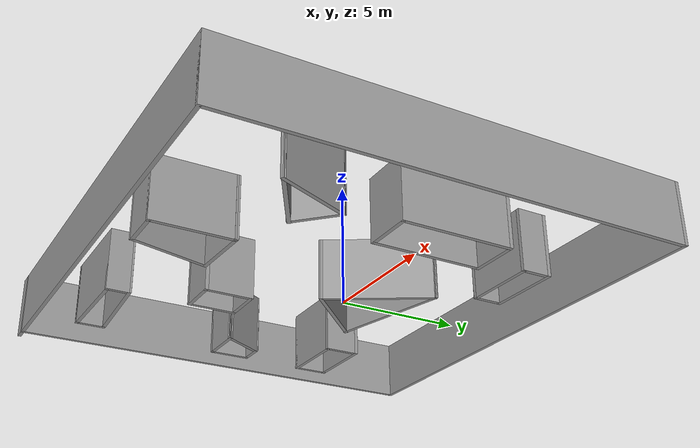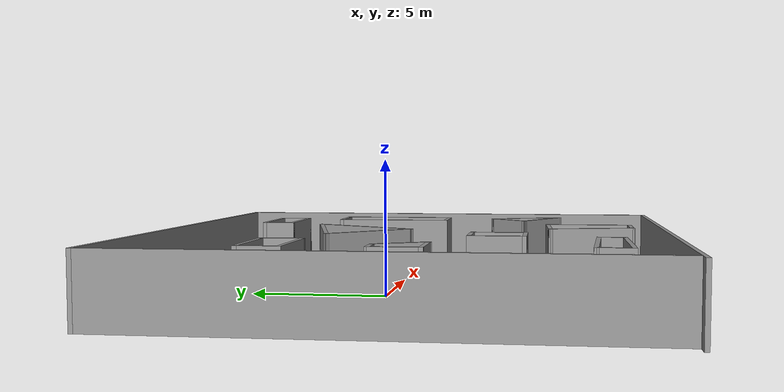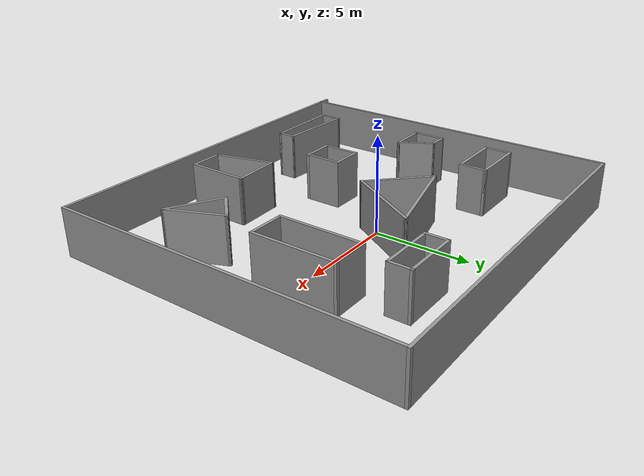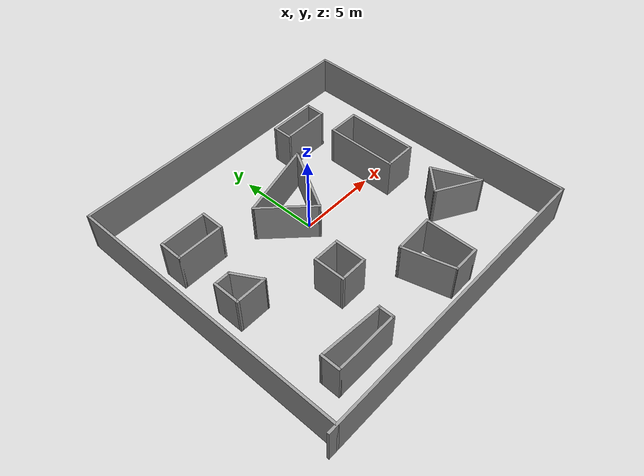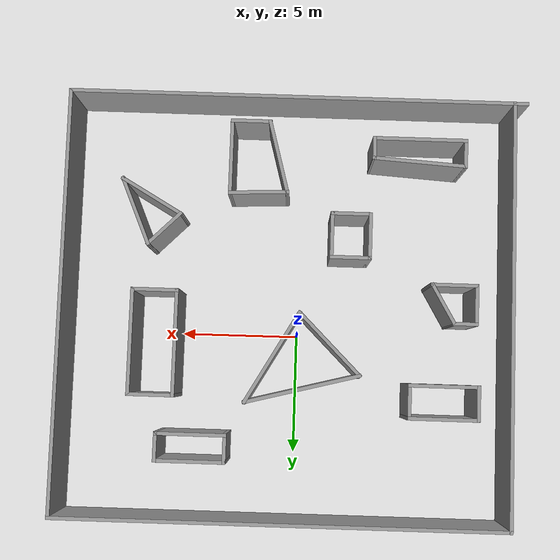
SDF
<?xml version='1.0'?>
<sdf version='1.7'>
  <model name='20250102'>
    <pose>0.220088 -1.15672 0 0 -0 0</pose>
    <link name='Wall_10'>
      <collision name='Wall_10_Collision'>
        <geometry>
          <box>
            <size>1.25 0.15 2.5</size>
          </box>
        </geometry>
        <pose>0 0 1.25 0 -0 0</pose>
      </collision>
      <visual name='Wall_10_Visual'>
        <pose>0 0 1.25 0 -0 0</pose>
        <geometry>
          <box>
            <size>1.25 0.15 2.5</size>
          </box>
        </geometry>
        <material>
          <script>
            <uri>file://media/materials/scripts/gazebo.material</uri>
            <name>Gazebo/Grey</name>
          </script>
          <ambient>1 1 1 1</ambient>
        </material>
        <meta>
          <layer>0</layer>
        </meta>
      </visual>
      <pose>-7.11262 -6.70106 0 0 -0 -1.5708</pose>
    </link>
    <link name='Wall_11'>
      <collision name='Wall_11_Collision'>
        <geometry>
          <box>
            <size>4 0.15 2.5</size>
          </box>
        </geometry>
        <pose>0 0 1.25 0 -0 0</pose>
      </collision>
      <visual name='Wall_11_Visual'>
        <pose>0 0 1.25 0 -0 0</pose>
        <geometry>
          <box>
            <size>4 0.15 2.5</size>
          </box>
        </geometry>
        <material>
          <script>
            <uri>file://media/materials/scripts/gazebo.material</uri>
            <name>Gazebo/Grey</name>
          </script>
          <ambient>1 1 1 1</ambient>
        </material>
        <meta>
          <layer>0</layer>
        </meta>
      </visual>
      <pose>-5.18762 -7.25106 0 0 -0 0</pose>
    </link>
    <link name='Wall_12'>
      <collision name='Wall_12_Collision'>
        <geometry>
          <box>
            <size>1 0.15 2.5</size>
          </box>
        </geometry>
        <pose>0 0 1.25 0 -0 0</pose>
      </collision>
      <visual name='Wall_12_Visual'>
        <pose>0 0 1.25 0 -0 0</pose>
        <geometry>
          <box>
            <size>1 0.15 2.5</size>
          </box>
        </geometry>
        <material>
          <script>
            <uri>file://media/materials/scripts/gazebo.material</uri>
            <name>Gazebo/Grey</name>
          </script>
          <ambient>1 1 1 1</ambient>
        </material>
        <meta>
          <layer>0</layer>
        </meta>
      </visual>
      <pose>-3.26262 -6.82606 0 0 -0 1.5708</pose>
    </link>
    <link name='Wall_13'>
      <collision name='Wall_13_Collision'>
        <geometry>
          <box>
            <size>4.00811 0.15 2.5</size>
          </box>
        </geometry>
        <pose>0 0 1.25 0 -0 0</pose>
      </collision>
      <visual name='Wall_13_Visual'>
        <pose>0 0 1.25 0 -0 0</pose>
        <geometry>
          <box>
            <size>4.00811 0.15 2.5</size>
          </box>
        </geometry>
        <material>
          <script>
            <uri>file://media/materials/scripts/gazebo.material</uri>
            <name>Gazebo/Grey</name>
          </script>
          <ambient>1 1 1 1</ambient>
        </material>
        <meta>
          <layer>0</layer>
        </meta>
      </visual>
      <pose>-5.18762 -6.27606 0 0 -0 3.07675</pose>
    </link>
    <link name='Wall_15'>
      <collision name='Wall_15_Collision'>
        <geometry>
          <box>
            <size>2 0.15 2.5</size>
          </box>
        </geometry>
        <pose>0 0 1.25 0 -0 0</pose>
      </collision>
      <visual name='Wall_15_Visual'>
        <pose>0 0 1.25 0 -0 0</pose>
        <geometry>
          <box>
            <size>2 0.15 2.5</size>
          </box>
        </geometry>
        <material>
          <script>
            <uri>file://media/materials/scripts/gazebo.material</uri>
            <name>Gazebo/Grey</name>
          </script>
          <ambient>1 1 1 1</ambient>
        </material>
        <meta>
          <layer>0</layer>
        </meta>
      </visual>
      <pose>-3.16595 -3.05881 0 0 -0 1.5708</pose>
    </link>
    <link name='Wall_16'>
      <collision name='Wall_16_Collision'>
        <geometry>
          <box>
            <size>1.75 0.15 2.5</size>
          </box>
        </geometry>
        <pose>0 0 1.25 0 -0 0</pose>
      </collision>
      <visual name='Wall_16_Visual'>
        <pose>0 0 1.25 0 -0 0</pose>
        <geometry>
          <box>
            <size>1.75 0.15 2.5</size>
          </box>
        </geometry>
        <material>
          <script>
            <uri>file://media/materials/scripts/gazebo.material</uri>
            <name>Gazebo/Grey</name>
          </script>
          <ambient>1 1 1 1</ambient>
        </material>
        <meta>
          <layer>0</layer>
        </meta>
      </visual>
      <pose>-2.36595 -2.13381 0 0 -0 0</pose>
    </link>
    <link name='Wall_17'>
      <collision name='Wall_17_Collision'>
        <geometry>
          <box>
            <size>2 0.15 2.5</size>
          </box>
        </geometry>
        <pose>0 0 1.25 0 -0 0</pose>
      </collision>
      <visual name='Wall_17_Visual'>
        <pose>0 0 1.25 0 -0 0</pose>
        <geometry>
          <box>
            <size>2 0.15 2.5</size>
          </box>
        </geometry>
        <material>
          <script>
            <uri>file://media/materials/scripts/gazebo.material</uri>
            <name>Gazebo/Grey</name>
          </script>
          <ambient>1 1 1 1</ambient>
        </material>
        <meta>
          <layer>0</layer>
        </meta>
      </visual>
      <pose>-1.56595 -3.05881 0 0 -0 -1.5708</pose>
    </link>
    <link name='Wall_18'>
      <collision name='Wall_18_Collision'>
        <geometry>
          <box>
            <size>1.75 0.15 2.5</size>
          </box>
        </geometry>
        <pose>0 0 1.25 0 -0 0</pose>
      </collision>
      <visual name='Wall_18_Visual'>
        <pose>0 0 1.25 0 -0 0</pose>
        <geometry>
          <box>
            <size>1.75 0.15 2.5</size>
          </box>
        </geometry>
        <material>
          <script>
            <uri>file://media/materials/scripts/gazebo.material</uri>
            <name>Gazebo/Grey</name>
          </script>
          <ambient>1 1 1 1</ambient>
        </material>
        <meta>
          <layer>0</layer>
        </meta>
      </visual>
      <pose>-2.36595 -3.98381 0 0 -0 3.14159</pose>
    </link>
    <link name='Wall_20'>
      <collision name='Wall_20_Collision'>
        <geometry>
          <box>
            <size>3.25 0.15 2.5</size>
          </box>
        </geometry>
        <pose>0 0 1.25 0 -0 0</pose>
      </collision>
      <visual name='Wall_20_Visual'>
        <pose>0 0 1.25 0 -0 0</pose>
        <geometry>
          <box>
            <size>3.25 0.15 2.5</size>
          </box>
        </geometry>
        <material>
          <script>
            <uri>file://media/materials/scripts/gazebo.material</uri>
            <name>Gazebo/Grey</name>
          </script>
          <ambient>1 1 1 1</ambient>
        </material>
        <meta>
          <layer>0</layer>
        </meta>
      </visual>
      <pose>0.771251 -6.32508 0 0 -0 -1.309</pose>
    </link>
    <link name='Wall_21'>
      <collision name='Wall_21_Collision'>
        <geometry>
          <box>
            <size>1.75 0.15 2.5</size>
          </box>
        </geometry>
        <pose>0 0 1.25 0 -0 0</pose>
      </collision>
      <visual name='Wall_21_Visual'>
        <pose>0 0 1.25 0 -0 0</pose>
        <geometry>
          <box>
            <size>1.75 0.15 2.5</size>
          </box>
        </geometry>
        <material>
          <script>
            <uri>file://media/materials/scripts/gazebo.material</uri>
            <name>Gazebo/Grey</name>
          </script>
          <ambient>1 1 1 1</ambient>
        </material>
        <meta>
          <layer>0</layer>
        </meta>
      </visual>
      <pose>1.97242 -7.82227 0 0 -0 0</pose>
    </link>
    <link name='Wall_22'>
      <collision name='Wall_22_Collision'>
        <geometry>
          <box>
            <size>3.25 0.15 2.5</size>
          </box>
        </geometry>
        <pose>0 0 1.25 0 -0 0</pose>
      </collision>
      <visual name='Wall_22_Visual'>
        <pose>0 0 1.25 0 -0 0</pose>
        <geometry>
          <box>
            <size>3.25 0.15 2.5</size>
          </box>
        </geometry>
        <material>
          <script>
            <uri>file://media/materials/scripts/gazebo.material</uri>
            <name>Gazebo/Grey</name>
          </script>
          <ambient>1 1 1 1</ambient>
        </material>
        <meta>
          <layer>0</layer>
        </meta>
      </visual>
      <pose>2.77242 -6.27227 0 0 -0 1.5708</pose>
    </link>
    <link name='Wall_23'>
      <collision name='Wall_23_Collision'>
        <geometry>
          <box>
            <size>2.55466 0.15 2.5</size>
          </box>
        </geometry>
        <pose>0 0 1.25 0 -0 0</pose>
      </collision>
      <visual name='Wall_23_Visual'>
        <pose>0 0 1.25 0 -0 0</pose>
        <geometry>
          <box>
            <size>2.55466 0.15 2.5</size>
          </box>
        </geometry>
        <material>
          <script>
            <uri>file://media/materials/scripts/gazebo.material</uri>
            <name>Gazebo/Grey</name>
          </script>
          <ambient>1 1 1 1</ambient>
        </material>
        <meta>
          <layer>0</layer>
        </meta>
      </visual>
      <pose>1.57125 -4.77508 0 0 -0 -3.09765</pose>
    </link>
    <link name='Wall_25'>
      <collision name='Wall_25_Collision'>
        <geometry>
          <box>
            <size>2 0.15 2.5</size>
          </box>
        </geometry>
        <pose>0 0 1.25 0 -0 0</pose>
      </collision>
      <visual name='Wall_25_Visual'>
        <pose>0 0 1.25 0 -0 0</pose>
        <geometry>
          <box>
            <size>2 0.15 2.5</size>
          </box>
        </geometry>
        <material>
          <script>
            <uri>file://media/materials/scripts/gazebo.material</uri>
            <name>Gazebo/Grey</name>
          </script>
          <ambient>1 1 1 1</ambient>
        </material>
        <meta>
          <layer>0</layer>
        </meta>
      </visual>
      <pose>5.46434 -3.11127 0 0 -0 -2.35619</pose>
    </link>
    <link name='Wall_26'>
      <collision name='Wall_26_Collision'>
        <geometry>
          <box>
            <size>3 0.15 2.5</size>
          </box>
        </geometry>
        <pose>0 0 1.25 0 -0 0</pose>
      </collision>
      <visual name='Wall_26_Visual'>
        <pose>0 0 1.25 0 -0 0</pose>
        <geometry>
          <box>
            <size>3 0.15 2.5</size>
          </box>
        </geometry>
        <material>
          <script>
            <uri>file://media/materials/scripts/gazebo.material</uri>
            <name>Gazebo/Grey</name>
          </script>
          <ambient>1 1 1 1</ambient>
        </material>
        <meta>
          <layer>0</layer>
        </meta>
      </visual>
      <pose>6.04436 -4.47784 0 0 -0 -0.523599</pose>
    </link>
    <link name='Wall_27'>
      <collision name='Wall_27_Collision'>
        <geometry>
          <box>
            <size>3.11913 0.15 2.5</size>
          </box>
        </geometry>
        <pose>0 0 1.25 0 -0 0</pose>
      </collision>
      <visual name='Wall_27_Visual'>
        <pose>0 0 1.25 0 -0 0</pose>
        <geometry>
          <box>
            <size>3.11913 0.15 2.5</size>
          </box>
        </geometry>
        <material>
          <script>
            <uri>file://media/materials/scripts/gazebo.material</uri>
            <name>Gazebo/Grey</name>
          </script>
          <ambient>1 1 1 1</ambient>
        </material>
        <meta>
          <layer>0</layer>
        </meta>
      </visual>
      <pose>6.69843 -3.82377 0 0 -0 1.97218</pose>
    </link>
    <link name='Wall_29'>
      <collision name='Wall_29_Collision'>
        <geometry>
          <box>
            <size>4.5 0.15 2.5</size>
          </box>
        </geometry>
        <pose>0 0 1.25 0 -0 0</pose>
      </collision>
      <visual name='Wall_29_Visual'>
        <pose>0 0 1.25 0 -0 0</pose>
        <geometry>
          <box>
            <size>4.5 0.15 2.5</size>
          </box>
        </geometry>
        <material>
          <script>
            <uri>file://media/materials/scripts/gazebo.material</uri>
            <name>Gazebo/Grey</name>
          </script>
          <ambient>1 1 1 1</ambient>
        </material>
        <meta>
          <layer>0</layer>
        </meta>
      </visual>
      <pose>0.776897 2.11565 0 0 -0 -2.0944</pose>
    </link>
    <link name='Wall_30'>
      <collision name='Wall_30_Collision'>
        <geometry>
          <box>
            <size>3.75 0.15 2.5</size>
          </box>
        </geometry>
        <pose>0 0 1.25 0 -0 0</pose>
      </collision>
      <visual name='Wall_30_Visual'>
        <pose>0 0 1.25 0 -0 0</pose>
        <geometry>
          <box>
            <size>3.75 0.15 2.5</size>
          </box>
        </geometry>
        <material>
          <script>
            <uri>file://media/materials/scripts/gazebo.material</uri>
            <name>Gazebo/Grey</name>
          </script>
          <ambient>1 1 1 1</ambient>
        </material>
        <meta>
          <layer>0</layer>
        </meta>
      </visual>
      <pose>-1.5834 1.50484 0 0 -0 2.35619</pose>
    </link>
    <link name='Wall_31'>
      <collision name='Wall_31_Collision'>
        <geometry>
          <box>
            <size>5.02609 0.15 2.5</size>
          </box>
        </geometry>
        <pose>0 0 1.25 0 -0 0</pose>
      </collision>
      <visual name='Wall_31_Visual'>
        <pose>0 0 1.25 0 -0 0</pose>
        <geometry>
          <box>
            <size>5.02609 0.15 2.5</size>
          </box>
        </geometry>
        <material>
          <script>
            <uri>file://media/materials/scripts/gazebo.material</uri>
            <name>Gazebo/Grey</name>
          </script>
          <ambient>1 1 1 1</ambient>
        </material>
        <meta>
          <layer>0</layer>
        </meta>
      </visual>
      <pose>-0.495895 3.38845 0 0 -0 0.253232</pose>
    </link>
    <link name='Wall_33'>
      <collision name='Wall_33_Collision'>
        <geometry>
          <box>
            <size>4.5 0.15 2.5</size>
          </box>
        </geometry>
        <pose>0 0 1.25 0 -0 0</pose>
      </collision>
      <visual name='Wall_33_Visual'>
        <pose>0 0 1.25 0 -0 0</pose>
        <geometry>
          <box>
            <size>4.5 0.15 2.5</size>
          </box>
        </geometry>
        <material>
          <script>
            <uri>file://media/materials/scripts/gazebo.material</uri>
            <name>Gazebo/Grey</name>
          </script>
          <ambient>1 1 1 1</ambient>
        </material>
        <meta>
          <layer>0</layer>
        </meta>
      </visual>
      <pose>4.82109 1.64324 0 0 -0 -1.5708</pose>
    </link>
    <link name='Wall_34'>
      <collision name='Wall_34_Collision'>
        <geometry>
          <box>
            <size>2 0.15 2.5</size>
          </box>
        </geometry>
        <pose>0 0 1.25 0 -0 0</pose>
      </collision>
      <visual name='Wall_34_Visual'>
        <pose>0 0 1.25 0 -0 0</pose>
        <geometry>
          <box>
            <size>2 0.15 2.5</size>
          </box>
        </geometry>
        <material>
          <script>
            <uri>file://media/materials/scripts/gazebo.material</uri>
            <name>Gazebo/Grey</name>
          </script>
          <ambient>1 1 1 1</ambient>
        </material>
        <meta>
          <layer>0</layer>
        </meta>
      </visual>
      <pose>5.74609 -0.531762 0 0 -0 0</pose>
    </link>
    <link name='Wall_35'>
      <collision name='Wall_35_Collision'>
        <geometry>
          <box>
            <size>4.5 0.15 2.5</size>
          </box>
        </geometry>
        <pose>0 0 1.25 0 -0 0</pose>
      </collision>
      <visual name='Wall_35_Visual'>
        <pose>0 0 1.25 0 -0 0</pose>
        <geometry>
          <box>
            <size>4.5 0.15 2.5</size>
          </box>
        </geometry>
        <material>
          <script>
            <uri>file://media/materials/scripts/gazebo.material</uri>
            <name>Gazebo/Grey</name>
          </script>
          <ambient>1 1 1 1</ambient>
        </material>
        <meta>
          <layer>0</layer>
        </meta>
      </visual>
      <pose>6.67109 1.64324 0 0 -0 1.5708</pose>
    </link>
    <link name='Wall_36'>
      <collision name='Wall_36_Collision'>
        <geometry>
          <box>
            <size>2 0.15 2.5</size>
          </box>
        </geometry>
        <pose>0 0 1.25 0 -0 0</pose>
      </collision>
      <visual name='Wall_36_Visual'>
        <pose>0 0 1.25 0 -0 0</pose>
        <geometry>
          <box>
            <size>2 0.15 2.5</size>
          </box>
        </geometry>
        <material>
          <script>
            <uri>file://media/materials/scripts/gazebo.material</uri>
            <name>Gazebo/Grey</name>
          </script>
          <ambient>1 1 1 1</ambient>
        </material>
        <meta>
          <layer>0</layer>
        </meta>
      </visual>
      <pose>5.74609 3.81824 0 0 -0 3.14159</pose>
    </link>
    <link name='Wall_38'>
      <collision name='Wall_38_Collision'>
        <geometry>
          <box>
            <size>1.5 0.15 2.5</size>
          </box>
        </geometry>
        <pose>0 0 1.25 0 -0 0</pose>
      </collision>
      <visual name='Wall_38_Visual'>
        <pose>0 0 1.25 0 -0 0</pose>
        <geometry>
          <box>
            <size>1.5 0.15 2.5</size>
          </box>
        </geometry>
        <material>
          <script>
            <uri>file://media/materials/scripts/gazebo.material</uri>
            <name>Gazebo/Grey</name>
          </script>
          <ambient>1 1 1 1</ambient>
        </material>
        <meta>
          <layer>0</layer>
        </meta>
      </visual>
      <pose>-7.79012 3.77682 0 0 -0 -1.5708</pose>
    </link>
    <link name='Wall_39'>
      <collision name='Wall_39_Collision'>
        <geometry>
          <box>
            <size>3 0.15 2.5</size>
          </box>
        </geometry>
        <pose>0 0 1.25 0 -0 0</pose>
      </collision>
      <visual name='Wall_39_Visual'>
        <pose>0 0 1.25 0 -0 0</pose>
        <geometry>
          <box>
            <size>3 0.15 2.5</size>
          </box>
        </geometry>
        <material>
          <script>
            <uri>file://media/materials/scripts/gazebo.material</uri>
            <name>Gazebo/Grey</name>
          </script>
          <ambient>1 1 1 1</ambient>
        </material>
        <meta>
          <layer>0</layer>
        </meta>
      </visual>
      <pose>-6.36512 3.10182 0 0 -0 0</pose>
    </link>
    <link name='Wall_4'>
      <collision name='Wall_4_Collision'>
        <geometry>
          <box>
            <size>19.5 0.15 2.5</size>
          </box>
        </geometry>
        <pose>0 0 1.25 0 -0 0</pose>
      </collision>
      <visual name='Wall_4_Visual'>
        <pose>0 0 1.25 0 -0 0</pose>
        <geometry>
          <box>
            <size>19.5 0.15 2.5</size>
          </box>
        </geometry>
        <material>
          <script>
            <uri>file://media/materials/scripts/gazebo.material</uri>
            <name>Gazebo/Grey</name>
          </script>
          <ambient>1 1 1 1</ambient>
        </material>
        <meta>
          <layer>0</layer>
        </meta>
      </visual>
      <pose>-0 -8.925 0 0 -0 0</pose>
    </link>
    <link name='Wall_40'>
      <collision name='Wall_40_Collision'>
        <geometry>
          <box>
            <size>1.5 0.15 2.5</size>
          </box>
        </geometry>
        <pose>0 0 1.25 0 -0 0</pose>
      </collision>
      <visual name='Wall_40_Visual'>
        <pose>0 0 1.25 0 -0 0</pose>
        <geometry>
          <box>
            <size>1.5 0.15 2.5</size>
          </box>
        </geometry>
        <material>
          <script>
            <uri>file://media/materials/scripts/gazebo.material</uri>
            <name>Gazebo/Grey</name>
          </script>
          <ambient>1 1 1 1</ambient>
        </material>
        <meta>
          <layer>0</layer>
        </meta>
      </visual>
      <pose>-4.94012 3.77682 0 0 -0 1.5708</pose>
    </link>
    <link name='Wall_41'>
      <collision name='Wall_41_Collision'>
        <geometry>
          <box>
            <size>3 0.15 2.5</size>
          </box>
        </geometry>
        <pose>0 0 1.25 0 -0 0</pose>
      </collision>
      <visual name='Wall_41_Visual'>
        <pose>0 0 1.25 0 -0 0</pose>
        <geometry>
          <box>
            <size>3 0.15 2.5</size>
          </box>
        </geometry>
        <material>
          <script>
            <uri>file://media/materials/scripts/gazebo.material</uri>
            <name>Gazebo/Grey</name>
          </script>
          <ambient>1 1 1 1</ambient>
        </material>
        <meta>
          <layer>0</layer>
        </meta>
      </visual>
      <pose>-6.36512 4.45181 0 0 -0 3.14159</pose>
    </link>
    <link name='Wall_43'>
      <collision name='Wall_43_Collision'>
        <geometry>
          <box>
            <size>2 0.15 2.5</size>
          </box>
        </geometry>
        <pose>0 0 1.25 0 -0 0</pose>
      </collision>
      <visual name='Wall_43_Visual'>
        <pose>0 0 1.25 0 -0 0</pose>
        <geometry>
          <box>
            <size>2 0.15 2.5</size>
          </box>
        </geometry>
        <material>
          <script>
            <uri>file://media/materials/scripts/gazebo.material</uri>
            <name>Gazebo/Grey</name>
          </script>
          <ambient>1 1 1 1</ambient>
        </material>
        <meta>
          <layer>0</layer>
        </meta>
      </visual>
      <pose>-6.27165 -0.301575 0 0 -0 -1.0472</pose>
    </link>
    <link name='Wall_44'>
      <collision name='Wall_44_Collision'>
        <geometry>
          <box>
            <size>2 0.15 2.5</size>
          </box>
        </geometry>
        <pose>0 0 1.25 0 -0 0</pose>
      </collision>
      <visual name='Wall_44_Visual'>
        <pose>0 0 1.25 0 -0 0</pose>
        <geometry>
          <box>
            <size>2 0.15 2.5</size>
          </box>
        </geometry>
        <material>
          <script>
            <uri>file://media/materials/scripts/gazebo.material</uri>
            <name>Gazebo/Grey</name>
          </script>
          <ambient>1 1 1 1</ambient>
        </material>
        <meta>
          <layer>0</layer>
        </meta>
      </visual>
      <pose>-6.73416 -1.10265 0 0 -0 3.14159</pose>
    </link>
    <link name='Wall_45'>
      <collision name='Wall_45_Collision'>
        <geometry>
          <box>
            <size>1.75 0.15 2.5</size>
          </box>
        </geometry>
        <pose>0 0 1.25 0 -0 0</pose>
      </collision>
      <visual name='Wall_45_Visual'>
        <pose>0 0 1.25 0 -0 0</pose>
        <geometry>
          <box>
            <size>1.75 0.15 2.5</size>
          </box>
        </geometry>
        <material>
          <script>
            <uri>file://media/materials/scripts/gazebo.material</uri>
            <name>Gazebo/Grey</name>
          </script>
          <ambient>1 1 1 1</ambient>
        </material>
        <meta>
          <layer>0</layer>
        </meta>
      </visual>
      <pose>-7.65916 -0.302649 0 0 -0 1.5708</pose>
    </link>
    <link name='Wall_46'>
      <collision name='Wall_46_Collision'>
        <geometry>
          <box>
            <size>1.075 0.15 2.5</size>
          </box>
        </geometry>
        <pose>0 0 1.25 0 -0 0</pose>
      </collision>
      <visual name='Wall_46_Visual'>
        <pose>0 0 1.25 0 -0 0</pose>
        <geometry>
          <box>
            <size>1.075 0.15 2.5</size>
          </box>
        </geometry>
        <material>
          <script>
            <uri>file://media/materials/scripts/gazebo.material</uri>
            <name>Gazebo/Grey</name>
          </script>
          <ambient>1 1 1 1</ambient>
        </material>
        <meta>
          <layer>0</layer>
        </meta>
      </visual>
      <pose>-7.19665 0.498425 0 0 -0 0.002321</pose>
    </link>
    <link name='Wall_48'>
      <collision name='Wall_48_Collision'>
        <geometry>
          <box>
            <size>1.25 0.15 2.5</size>
          </box>
        </geometry>
        <pose>0 0 1.25 0 -0 0</pose>
      </collision>
      <visual name='Wall_48_Visual'>
        <pose>0 0 1.25 0 -0 0</pose>
        <geometry>
          <box>
            <size>1.25 0.15 2.5</size>
          </box>
        </geometry>
        <material>
          <script>
            <uri>file://media/materials/scripts/gazebo.material</uri>
            <name>Gazebo/Grey</name>
          </script>
          <ambient>1 1 1 1</ambient>
        </material>
        <meta>
          <layer>0</layer>
        </meta>
      </visual>
      <pose>2.60602 5.93597 0 0 -0 -1.5708</pose>
    </link>
    <link name='Wall_49'>
      <collision name='Wall_49_Collision'>
        <geometry>
          <box>
            <size>3 0.15 2.5</size>
          </box>
        </geometry>
        <pose>0 0 1.25 0 -0 0</pose>
      </collision>
      <visual name='Wall_49_Visual'>
        <pose>0 0 1.25 0 -0 0</pose>
        <geometry>
          <box>
            <size>3 0.15 2.5</size>
          </box>
        </geometry>
        <material>
          <script>
            <uri>file://media/materials/scripts/gazebo.material</uri>
            <name>Gazebo/Grey</name>
          </script>
          <ambient>1 1 1 1</ambient>
        </material>
        <meta>
          <layer>0</layer>
        </meta>
      </visual>
      <pose>4.03102 5.38597 0 0 -0 0</pose>
    </link>
    <link name='Wall_5'>
      <collision name='Wall_5_Collision'>
        <geometry>
          <box>
            <size>18 0.15 2.5</size>
          </box>
        </geometry>
        <pose>0 0 1.25 0 -0 0</pose>
      </collision>
      <visual name='Wall_5_Visual'>
        <pose>0 0 1.25 0 -0 0</pose>
        <geometry>
          <box>
            <size>18 0.15 2.5</size>
          </box>
        </geometry>
        <material>
          <script>
            <uri>file://media/materials/scripts/gazebo.material</uri>
            <name>Gazebo/Grey</name>
          </script>
          <ambient>1 1 1 1</ambient>
        </material>
        <meta>
          <layer>0</layer>
        </meta>
      </visual>
      <pose>9.675 -0 0 0 -0 1.5708</pose>
    </link>
    <link name='Wall_50'>
      <collision name='Wall_50_Collision'>
        <geometry>
          <box>
            <size>1.25 0.15 2.5</size>
          </box>
        </geometry>
        <pose>0 0 1.25 0 -0 0</pose>
      </collision>
      <visual name='Wall_50_Visual'>
        <pose>0 0 1.25 0 -0 0</pose>
        <geometry>
          <box>
            <size>1.25 0.15 2.5</size>
          </box>
        </geometry>
        <material>
          <script>
            <uri>file://media/materials/scripts/gazebo.material</uri>
            <name>Gazebo/Grey</name>
          </script>
          <ambient>1 1 1 1</ambient>
        </material>
        <meta>
          <layer>0</layer>
        </meta>
      </visual>
      <pose>5.45602 5.93597 0 0 -0 1.5708</pose>
    </link>
    <link name='Wall_51'>
      <collision name='Wall_51_Collision'>
        <geometry>
          <box>
            <size>3 0.15 2.5</size>
          </box>
        </geometry>
        <pose>0 0 1.25 0 -0 0</pose>
      </collision>
      <visual name='Wall_51_Visual'>
        <pose>0 0 1.25 0 -0 0</pose>
        <geometry>
          <box>
            <size>3 0.15 2.5</size>
          </box>
        </geometry>
        <material>
          <script>
            <uri>file://media/materials/scripts/gazebo.material</uri>
            <name>Gazebo/Grey</name>
          </script>
          <ambient>1 1 1 1</ambient>
        </material>
        <meta>
          <layer>0</layer>
        </meta>
      </visual>
      <pose>4.03102 6.48597 0 0 -0 3.14159</pose>
    </link>
    <link name='Wall_6'>
      <collision name='Wall_6_Collision'>
        <geometry>
          <box>
            <size>19 0.15 2.5</size>
          </box>
        </geometry>
        <pose>0 0 1.25 0 -0 0</pose>
      </collision>
      <visual name='Wall_6_Visual'>
        <pose>0 0 1.25 0 -0 0</pose>
        <geometry>
          <box>
            <size>19 0.15 2.5</size>
          </box>
        </geometry>
        <material>
          <script>
            <uri>file://media/materials/scripts/gazebo.material</uri>
            <name>Gazebo/Grey</name>
          </script>
          <ambient>1 1 1 1</ambient>
        </material>
        <meta>
          <layer>0</layer>
        </meta>
      </visual>
      <pose>0.25 8.925 0 0 -0 3.14159</pose>
    </link>
    <link name='Wall_7'>
      <collision name='Wall_7_Collision'>
        <geometry>
          <box>
            <size>18 0.15 2.5</size>
          </box>
        </geometry>
        <pose>0 0 1.25 0 -0 0</pose>
      </collision>
      <visual name='Wall_7_Visual'>
        <pose>0 0 1.25 0 -0 0</pose>
        <geometry>
          <box>
            <size>18 0.15 2.5</size>
          </box>
        </geometry>
        <material>
          <script>
            <uri>file://media/materials/scripts/gazebo.material</uri>
            <name>Gazebo/Grey</name>
          </script>
          <ambient>1 1 1 1</ambient>
        </material>
        <meta>
          <layer>0</layer>
        </meta>
      </visual>
      <pose>-9.175 -0 0 0 -0 -1.5708</pose>
    </link>
    <static>1</static>
  </model>
</sdf>
